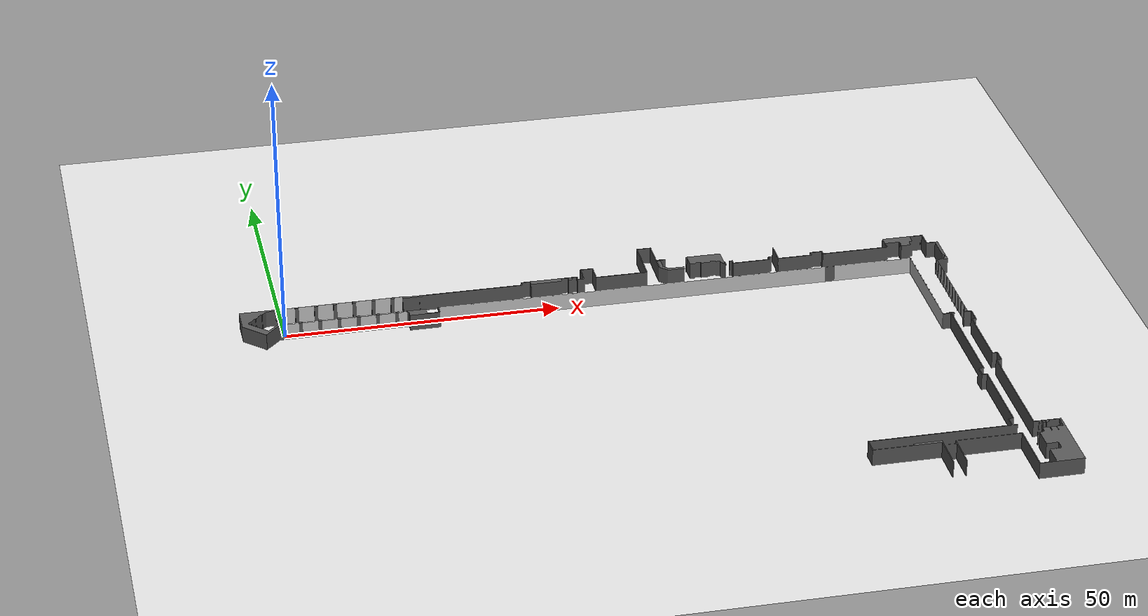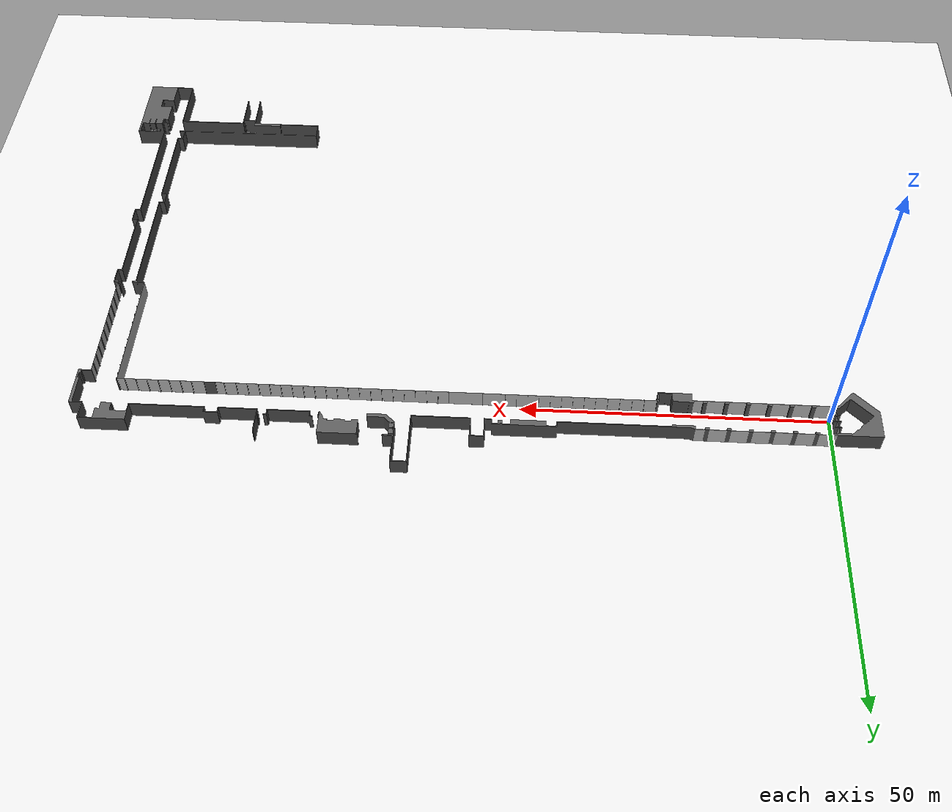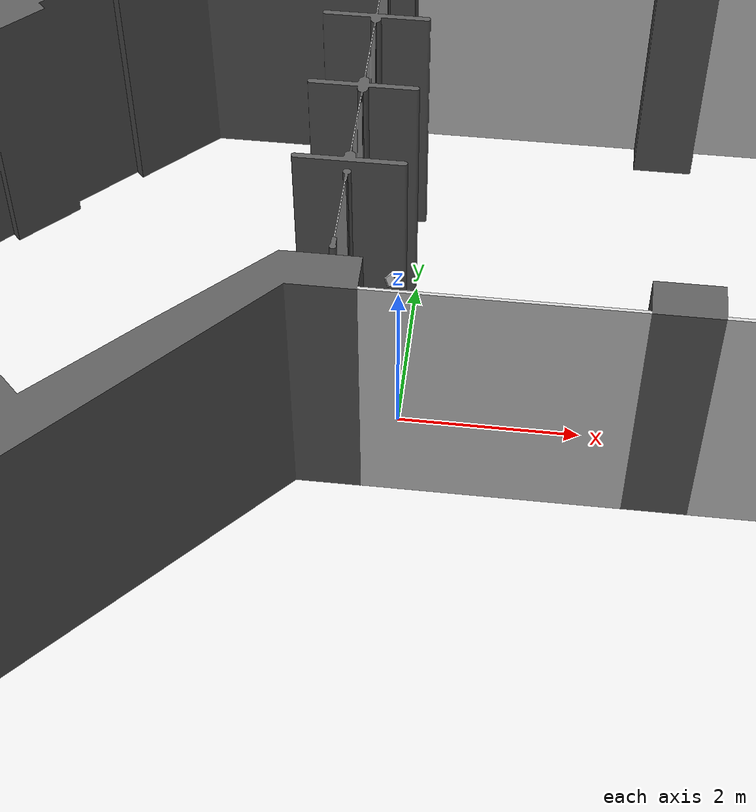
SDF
<?xml version="1.0"?>
<sdf version='1.10'>
  <world name='default'>
    <physics type='ode'>
      <max_step_size>0.0040000000000000001</max_step_size>
      <real_time_factor>1</real_time_factor>
      <real_time_update_rate>250</real_time_update_rate>
    </physics>
    <plugin name='gz::sim::systems::Physics' filename='gz-sim-physics-system'/>
    <plugin name='gz::sim::systems::UserCommands' filename='gz-sim-user-commands-system'>
      <set_all_light_entities>true</set_all_light_entities>
    </plugin>
    <plugin name='gz::sim::systems::SceneBroadcaster' filename='gz-sim-scene-broadcaster-system'/>
    <plugin name='gz::sim::systems::Contact' filename='gz-sim-contact-system'/>
    <plugin name='gz::sim::systems::Imu' filename='gz-sim-imu-system'/>
    <plugin name='gz::sim::systems::Magnetometer' filename='gz-sim-magnetometer-system'/>
    <plugin name='gz::sim::systems::Altimeter' filename='gz-sim-altimeter-system'/>
    <plugin name='gz::sim::systems::NavSat' filename='gz-sim-navsat-system'/>
    <plugin name='gz::sim::systems::Sensors' filename='gz-sim-sensors-system'>
      <render_engine>ogre2</render_engine>
    </plugin>
    <gui fullscreen='false'>
      <plugin name='3D View' filename='GzScene3D'>
        <gz-gui>
          <title>3D View</title>
          <property type='bool' key='showTitleBar'>0</property>
          <property type='string' key='state'>docked</property>
        </gz-gui>
        <engine>ogre2</engine>
        <scene>scene</scene>
        <ambient_light>0.5984631152222222 0.5984631152222222 0.5984631152222222</ambient_light>
        <background_color>0.8984631152222222 0.8984631152222222 0.8984631152222222</background_color>
        <camera_pose>-6 0 6 0 0.5 0</camera_pose>
      </plugin>
      <plugin name='World control' filename='WorldControl'>
        <gz-gui>
          <title>World control</title>
          <property type='bool' key='showTitleBar'>0</property>
          <property type='bool' key='resizable'>0</property>
          <property type='double' key='height'>72</property>
          <property type='double' key='width'>121</property>
          <property type='double' key='z'>1</property>
          <property type='string' key='state'>floating</property>
          <anchors target='3D View'>
            <line own='left' target='left'/>
            <line own='bottom' target='bottom'/>
          </anchors>
        </gz-gui>
        <play_pause>1</play_pause>
        <step>1</step>
        <start_paused>1</start_paused>
      </plugin>
      <plugin name='World stats' filename='WorldStats'>
        <gz-gui>
          <title>World stats</title>
          <property type='bool' key='showTitleBar'>0</property>
          <property type='bool' key='resizable'>0</property>
          <property type='double' key='height'>110</property>
          <property type='double' key='width'>290</property>
          <property type='double' key='z'>1</property>
          <property type='string' key='state'>floating</property>
          <anchors target='3D View'>
            <line own='right' target='right'/>
            <line own='bottom' target='bottom'/>
          </anchors>
        </gz-gui>
        <sim_time>1</sim_time>
        <real_time>1</real_time>
        <real_time_factor>1</real_time_factor>
        <iterations>1</iterations>
      </plugin>
    </gui>
    <gravity>0 0 -9.8000000000000007</gravity>
    <magnetic_field>6.0000000000000002e-06 2.3e-05 -4.1999999999999998e-05</magnetic_field>
    <atmosphere type='adiabatic'/>
    <spherical_coordinates>
      <surface_model>EARTH_WGS84</surface_model>
      <latitude_deg>39.79480109851339</latitude_deg>
      <longitude_deg>-84.08631702793322</longitude_deg>
      <elevation>265.2</elevation>
      <heading_deg>0</heading_deg>
    </spherical_coordinates>
    <scene>
      <grid>false</grid>
      <ambient>0.400000006 0.400000006 0.400000006 1</ambient>
      <background>0.699999988 0.699999988 0.699999988 1</background>
      <shadows>false</shadows>
    </scene>
    <model name='ground_plane'>
      <static>true</static>
      <link name='link'>
        <collision name='collision'>
          <geometry>
            <plane>
              <normal>0 0 1</normal>
              <size>1 1</size>
            </plane>
          </geometry>
          <surface>
            <friction>
              <ode/>
            </friction>
            <bounce/>
            <contact/>
          </surface>
        </collision>
        <visual name='visual'>
          <geometry>
            <plane>
              <normal>0 0 1</normal>
              <size>1000 1000</size>
            </plane>
          </geometry>
          <material>
            <ambient>0.9 0.9 0.9 1</ambient>
            <diffuse>0.9 0.9 0.9 1</diffuse>
            <specular>0.9 0.9 0.9 1</specular>
          </material>
        </visual>
        <pose>0 0 0 0 0 0</pose>
        <inertial>
          <pose>0 0 0 0 0 0</pose>
          <mass>1</mass>
          <inertia>
            <ixx>1</ixx>
            <ixy>0</ixy>
            <ixz>0</ixz>
            <iyy>1</iyy>
            <iyz>0</iyz>
            <izz>1</izz>
          </inertia>
        </inertial>
        <enable_wind>false</enable_wind>
      </link>
      <pose>0 0 0 0 0 0</pose>
      <self_collide>false</self_collide>
    </model>
    <include>
      <uri>
        models://uwb_beacon
      </uri>
      <name>uwb1</name>
      <pose>0 -.75 3 -2 0 1</pose>
    </include>
    <include>
      <uri>
        models://uwb_beacon
      </uri>
      <name>uwb2</name>
      <pose>10 -.75 3 -2 0 1</pose>
    </include>
    <include>
      <uri>
        models://uwb_beacon
      </uri>
      <pose>20 -.75 3 -2 0 1</pose>
      <name>uwb3</name>
    </include>
    <include>
      <uri>
        models://uwb_beacon
      </uri>
      <pose>30 -.75 3 -2 0 1</pose>
      <name>uwb4</name>
    </include>
    <include>
      <uri>
        models://uwb_beacon
      </uri>
      <pose>40 -.75 3 -2 0 1</pose>
      <name>uwb5</name>
    </include>
    <include>
      <uri>
        models://uwb_beacon
      </uri>
      <pose>50 -.75 3 -2 0 1</pose>
      <name>uwb6</name>
    </include>
    <include>
      <uri>
        models://OfficeHallway
      </uri>
      <pose>0 2 0 0 0 1.57079632679</pose>
    </include>
    <light name='sunUTC' type='directional'>
      <pose>0 0 500 0 0 0</pose>
      <cast_shadows>false</cast_shadows>
      <intensity>1</intensity>
      <direction>0.001 0.625 -0.78000000000000003</direction>
      <diffuse>0.903999984 0.903999984 0.903999984 1</diffuse>
      <specular>0.270999998 0.270999998 0.270999998 1</specular>
      <attenuation>
        <range>2000</range>
        <linear>0</linear>
        <constant>1</constant>
        <quadratic>0</quadratic>
      </attenuation>
      <spot>
        <inner_angle>0</inner_angle>
        <outer_angle>0</outer_angle>
        <falloff>0</falloff>
      </spot>
    </light>
  </world>
</sdf>

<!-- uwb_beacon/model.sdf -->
<sdf version="1.10">
  <model name="uwb_beacon">
    <self_collide>false</self_collide>
    <static>true</static>
    <link name="beacon">
      <light name="beacon_light" type="spot">
        <cast_shadows>false</cast_shadows>
        <visualize>0</visualize>
        <diffuse>0 1.0 0</diffuse>
        <specular>0 1.0 0</specular>
        <direction>0 0 1</direction>
        <intensity>5.0</intensity>
        <spot>
          <inner_angle>2.0</inner_angle>
          <outer_angle>2.0</outer_angle>
        </spot>
      </light>
      <visual name="beacon_body">
        <geometry>
          <box>
            <size>.1 .1 .02</size>
          </box>
        </geometry>
        <cast_shadows>false</cast_shadows>
      </visual>
    </link>
  </model>
</sdf>

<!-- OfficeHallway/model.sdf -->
<sdf version="1.10">
  <model name="OfficeHallway">
    <self_collide>false</self_collide>
    <static>true</static>
    <link name="OfficeHallwayLink">
      <visual name="Glass">
        <transparency>.5</transparency>
        <geometry>
          <mesh>
            <scale>1 1 1</scale>
            <uri>model://OfficeHallway/meshes/officehallway.dae</uri>
            <submesh>
              <name>Glass</name>
              <center>false</center>
            </submesh>
          </mesh>
        </geometry>
        <cast_shadows>false</cast_shadows>
      </visual>
      <visual name="Wall">
        <geometry>
          <mesh>
            <scale>1 1 1</scale>
            <uri>model://OfficeHallway/meshes/officehallway.dae</uri>
            <submesh>
              <name>Wall</name>
              <center>false</center>
            </submesh>
          </mesh>
        </geometry>
        <cast_shadows>false</cast_shadows>
      </visual>
    </link>
  </model>
</sdf>
